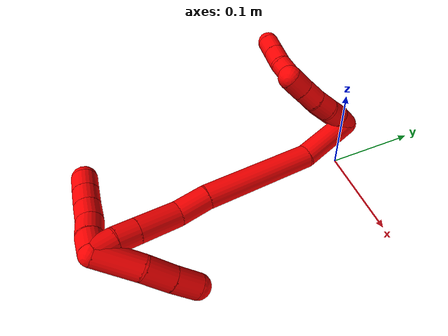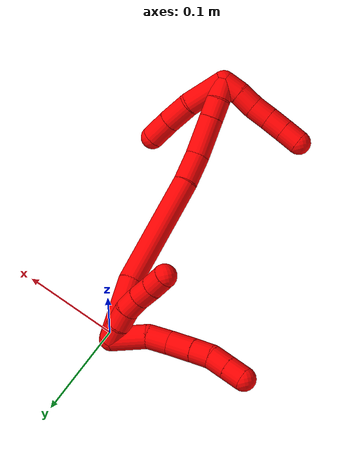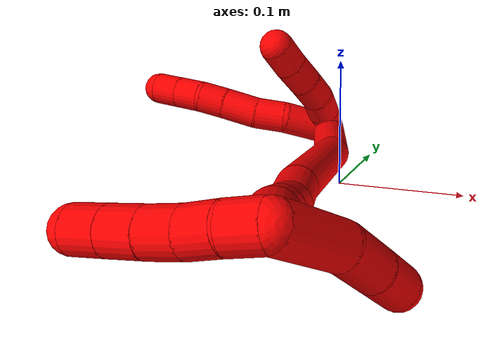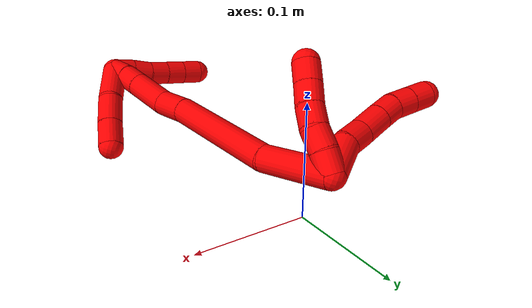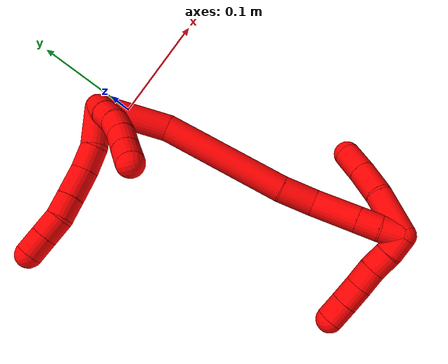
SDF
<sdf version="1.7">
 <world name="default">
  <model name="photoneo_s_sensor">
   <static>1</static>
   <pose>0 0 2 1.57079 1.57079 3.14159</pose>
   <link name="link">
    <inertial><mass>0.1</mass></inertial>
    <sensor name="sensor" type="depth">
     <update_rate>30</update_rate>
     <camera>
      <horizontal_fov>1.22</horizontal_fov>
      <image><width>1920</width><height>1200</height><format>B8G8R8</format></image>
      <clip><near>0.1</near><far>4</far></clip>
      <depth_camera><output>points</output></depth_camera>
     </camera>
     <plugin name="camera_plugin" filename="libgazebo_ros_depth_camera.so">
      <baseline>0.2</baseline>
      <alwaysOn>1</alwaysOn>
      <updateRate>0.0</updateRate>
      <cameraName>camera_ir</cameraName>
      <imageTopicName>/camera/color/image_raw</imageTopicName>
      <cameraInfoTopicName>/camera/color/camera_info</cameraInfoTopicName>
      <depthImageTopicName>/camera/depth/image_raw</depthImageTopicName>
      <depthImageCameraInfoTopicName>/camera/depth/camera_info</depthImageCameraInfoTopicName>
      <pointCloudTopicName>/camera/depth/points</pointCloudTopicName>
      <frameName>fr_optical</frameName>
      <pointCloudCutoff>0.1</pointCloudCutoff>
      <pointCloudCutoffMax>2.0</pointCloudCutoffMax>
      <distortionK1>0</distortionK1>
      <distortionK2>0</distortionK2>
      <distortionK3>0</distortionK3>
      <distortionT1>0</distortionT1>
      <distortionT2>0</distortionT2>
      <CxPrime>0</CxPrime>
      <Cx>0</Cx>
      <Cy>0</Cy>
      <focalLength>0</focalLength>
      <hackBaseline>0</hackBaseline>
     </plugin>
    </sensor>
   </link>
  </model>
  <model name="bin">
   <static>1</static>
   <link name="bottom">
    <collision name="collision-bottom">
     <pose>0 0 -0.01 0 -0 0</pose>
     <geometry><box><size>0.8 0.6 0.02</size></box></geometry>
     <surface>
      <friction><ode><mu>100</mu><mu2>100</mu2></ode></friction>
      <contact><collide_bitmask>65535</collide_bitmask></contact>
     </surface>
    </collision>
   </link>
   <link name="west_wall">
    <collision name="collision-west_wall">
     <pose>-0.41 0 0.1 0 -0 0</pose>
     <geometry><box><size>0.02 0.6 0.2</size></box></geometry>
     <surface>
      <friction><ode><mu>100</mu><mu2>100</mu2></ode></friction>
      <contact><collide_bitmask>65535</collide_bitmask></contact>
     </surface>
    </collision>
   </link>
   <link name="east_wall">
    <collision name="collision-east_wall">
     <pose>0.41 0 0.1 0 -0 0</pose>
     <geometry><box><size>0.02 0.6 0.2</size></box></geometry>
     <surface>
      <friction><ode><mu>100</mu><mu2>100</mu2></ode></friction>
      <contact><collide_bitmask>65535</collide_bitmask></contact>
     </surface>
    </collision>
   </link>
   <link name="south_wall">
    <collision name="collision-south_wall">
     <pose>0 -0.31 0.1 0 -0 0</pose>
     <geometry><box><size>0.8 0.02 0.2</size></box></geometry>
     <surface>
      <friction><ode><mu>100</mu><mu2>100</mu2></ode></friction>
      <contact><collide_bitmask>65535</collide_bitmask></contact>
     </surface>
    </collision>
   </link>
   <link name="north_wall">
    <collision name="collision-north_wall">
     <pose>0 0.31 0.1 0 -0 0</pose>
     <geometry><box><size>0.8 0.02 0.2</size></box></geometry>
     <surface>
      <friction><ode><mu>100</mu><mu2>100</mu2></ode></friction>
      <contact><collide_bitmask>65535</collide_bitmask></contact>
     </surface>
    </collision>
   </link>
  </model>
  <model name="2">
   <static>0</static>
   <link name="2">
    <collision name="collision-cylinder-e_1_2_8">
     <pose>-0.015026 -0.012222 -0.003321 1.83614 -0.870423 -1.09279</pose>
     <geometry><cylinder><radius>0.0125</radius><length>0.039304</length></cylinder></geometry>
     <surface>
      <friction><ode><mu>1.16</mu><mu2>1.16</mu2><slip1>0</slip1><slip2>0</slip2></ode></friction>
      <contact><ode><kp>1e+06</kp><kd>1</kd><max_vel>0</max_vel><min_depth>0.001</min_depth></ode></contact>
     </surface>
    </collision>
    <visual name="visual-cylinder-e_1_2_8">
     <pose>-0.015026 -0.012222 -0.003321 1.83614 -0.870423 -1.09279</pose>
     <geometry><cylinder><radius>0.0125</radius><length>0.039304</length></cylinder></geometry>
     <material><ambient>1 0 0 1</ambient></material>
    </visual>
    <collision name="collision-cylinder-e_2_8_9">
     <pose>-0.037728 -0.030984 -0.012327 2.28639 -0.725029 -1.3882</pose>
     <geometry><cylinder><radius>0.0125</radius><length>0.023151</length></cylinder></geometry>
     <surface>
      <friction><ode><mu>1.16</mu><mu2>1.16</mu2><slip1>0</slip1><slip2>0</slip2></ode></friction>
      <contact><ode><kp>1e+06</kp><kd>1</kd><max_vel>0</max_vel><min_depth>0.001</min_depth></ode></contact>
     </surface>
    </collision>
    <visual name="visual-cylinder-e_2_8_9">
     <pose>-0.037728 -0.030984 -0.012327 2.28639 -0.725029 -1.3882</pose>
     <geometry><cylinder><radius>0.0125</radius><length>0.023151</length></cylinder></geometry>
     <material><ambient>1 0 0 1</ambient></material>
    </visual>
    <collision name="collision-cylinder-e_3_9_10">
     <pose>-0.05549 -0.043511 -0.024593 2.40338 -0.847836 -1.72428</pose>
     <geometry><cylinder><radius>0.0125</radius><length>0.0269</length></cylinder></geometry>
     <surface>
      <friction><ode><mu>1.16</mu><mu2>1.16</mu2><slip1>0</slip1><slip2>0</slip2></ode></friction>
      <contact><ode><kp>1e+06</kp><kd>1</kd><max_vel>0</max_vel><min_depth>0.001</min_depth></ode></contact>
     </surface>
    </collision>
    <visual name="visual-cylinder-e_3_9_10">
     <pose>-0.05549 -0.043511 -0.024593 2.40338 -0.847836 -1.72428</pose>
     <geometry><cylinder><radius>0.0125</radius><length>0.0269</length></cylinder></geometry>
     <material><ambient>1 0 0 1</ambient></material>
    </visual>
    <collision name="collision-cylinder-e_4_10_11">
     <pose>-0.073025 -0.054103 -0.036347 2.41429 -0.821967 -1.70588</pose>
     <geometry><cylinder><radius>0.0125</radius><length>0.020341</length></cylinder></geometry>
     <surface>
      <friction><ode><mu>1.16</mu><mu2>1.16</mu2><slip1>0</slip1><slip2>0</slip2></ode></friction>
      <contact><ode><kp>1e+06</kp><kd>1</kd><max_vel>0</max_vel><min_depth>0.001</min_depth></ode></contact>
     </surface>
    </collision>
    <visual name="visual-cylinder-e_4_10_11">
     <pose>-0.073025 -0.054103 -0.036347 2.41429 -0.821967 -1.70588</pose>
     <geometry><cylinder><radius>0.0125</radius><length>0.020341</length></cylinder></geometry>
     <material><ambient>1 0 0 1</ambient></material>
    </visual>
    <collision name="collision-cylinder-e_5_11_12">
     <pose>-0.086509 -0.062323 -0.048728 2.67657 -0.642305 -1.9044</pose>
     <geometry><cylinder><radius>0.0125</radius><length>0.020146</length></cylinder></geometry>
     <surface>
      <friction><ode><mu>1.16</mu><mu2>1.16</mu2><slip1>0</slip1><slip2>0</slip2></ode></friction>
      <contact><ode><kp>1e+06</kp><kd>1</kd><max_vel>0</max_vel><min_depth>0.001</min_depth></ode></contact>
     </surface>
    </collision>
    <visual name="visual-cylinder-e_5_11_12">
     <pose>-0.086509 -0.062323 -0.048728 2.67657 -0.642305 -1.9044</pose>
     <geometry><cylinder><radius>0.0125</radius><length>0.020146</length></cylinder></geometry>
     <material><ambient>1 0 0 1</ambient></material>
    </visual>
    <collision name="collision-cylinder-e_6_12_6">
     <pose>-0.098576 -0.06957 -0.06315 2.67531 -0.641731 -1.90084</pose>
     <geometry><cylinder><radius>0.0125</radius><length>0.020158</length></cylinder></geometry>
     <surface>
      <friction><ode><mu>1.16</mu><mu2>1.16</mu2><slip1>0</slip1><slip2>0</slip2></ode></friction>
      <contact><ode><kp>1e+06</kp><kd>1</kd><max_vel>0</max_vel><min_depth>0.001</min_depth></ode></contact>
     </surface>
    </collision>
    <visual name="visual-cylinder-e_6_12_6">
     <pose>-0.098576 -0.06957 -0.06315 2.67531 -0.641731 -1.90084</pose>
     <geometry><cylinder><radius>0.0125</radius><length>0.020158</length></cylinder></geometry>
     <material><ambient>1 0 0 1</ambient></material>
    </visual>
    <collision name="collision-cylinder-e_1_2_13">
     <pose>-0.008156 -0.000838 0.005725 0.145261 -0.953769 -0.075147</pose>
     <geometry><cylinder><radius>0.0125</radius><length>0.02</length></cylinder></geometry>
     <surface>
      <friction><ode><mu>1.16</mu><mu2>1.16</mu2><slip1>0</slip1><slip2>0</slip2></ode></friction>
      <contact><ode><kp>1e+06</kp><kd>1</kd><max_vel>0</max_vel><min_depth>0.001</min_depth></ode></contact>
     </surface>
    </collision>
    <visual name="visual-cylinder-e_1_2_13">
     <pose>-0.008156 -0.000838 0.005725 0.145261 -0.953769 -0.075147</pose>
     <geometry><cylinder><radius>0.0125</radius><length>0.02</length></cylinder></geometry>
     <material><ambient>1 0 0 1</ambient></material>
    </visual>
    <collision name="collision-cylinder-e_2_13_14">
     <pose>-0.023895 -0.003695 0.017648 0.315104 -0.860725 -0.145603</pose>
     <geometry><cylinder><radius>0.0125</radius><length>0.02</length></cylinder></geometry>
     <surface>
      <friction><ode><mu>1.16</mu><mu2>1.16</mu2><slip1>0</slip1><slip2>0</slip2></ode></friction>
      <contact><ode><kp>1e+06</kp><kd>1</kd><max_vel>0</max_vel><min_depth>0.001</min_depth></ode></contact>
     </surface>
    </collision>
    <visual name="visual-cylinder-e_2_13_14">
     <pose>-0.023895 -0.003695 0.017648 0.315104 -0.860725 -0.145603</pose>
     <geometry><cylinder><radius>0.0125</radius><length>0.02</length></cylinder></geometry>
     <material><ambient>1 0 0 1</ambient></material>
    </visual>
    <collision name="collision-cylinder-e_3_14_15">
     <pose>-0.039926 -0.008953 0.028108 0.64974 -1.00606 -0.366492</pose>
     <geometry><cylinder><radius>0.0125</radius><length>0.02</length></cylinder></geometry>
     <surface>
      <friction><ode><mu>1.16</mu><mu2>1.16</mu2><slip1>0</slip1><slip2>0</slip2></ode></friction>
      <contact><ode><kp>1e+06</kp><kd>1</kd><max_vel>0</max_vel><min_depth>0.001</min_depth></ode></contact>
     </surface>
    </collision>
    <visual name="visual-cylinder-e_3_14_15">
     <pose>-0.039926 -0.008953 0.028108 0.64974 -1.00606 -0.366492</pose>
     <geometry><cylinder><radius>0.0125</radius><length>0.02</length></cylinder></geometry>
     <material><ambient>1 0 0 1</ambient></material>
    </visual>
    <collision name="collision-cylinder-e_4_15_16">
     <pose>-0.057344 -0.015205 0.035601 0.750441 -1.11308 -0.480627</pose>
     <geometry><cylinder><radius>0.0125</radius><length>0.02</length></cylinder></geometry>
     <surface>
      <friction><ode><mu>1.16</mu><mu2>1.16</mu2><slip1>0</slip1><slip2>0</slip2></ode></friction>
      <contact><ode><kp>1e+06</kp><kd>1</kd><max_vel>0</max_vel><min_depth>0.001</min_depth></ode></contact>
     </surface>
    </collision>
    <visual name="visual-cylinder-e_4_15_16">
     <pose>-0.057344 -0.015205 0.035601 0.750441 -1.11308 -0.480627</pose>
     <geometry><cylinder><radius>0.0125</radius><length>0.02</length></cylinder></geometry>
     <material><ambient>1 0 0 1</ambient></material>
    </visual>
    <collision name="collision-cylinder-e_5_16_5">
     <pose>-0.075311 -0.020741 0.042396 0.616071 -1.11897 -0.393337</pose>
     <geometry><cylinder><radius>0.0125</radius><length>0.02</length></cylinder></geometry>
     <surface>
      <friction><ode><mu>1.16</mu><mu2>1.16</mu2><slip1>0</slip1><slip2>0</slip2></ode></friction>
      <contact><ode><kp>1e+06</kp><kd>1</kd><max_vel>0</max_vel><min_depth>0.001</min_depth></ode></contact>
     </surface>
    </collision>
    <visual name="visual-cylinder-e_5_16_5">
     <pose>-0.075311 -0.020741 0.042396 0.616071 -1.11897 -0.393337</pose>
     <geometry><cylinder><radius>0.0125</radius><length>0.02</length></cylinder></geometry>
     <material><ambient>1 0 0 1</ambient></material>
    </visual>
    <collision name="collision-cylinder-e_1_2_17">
     <pose>0.000944 -0.019704 0.026864 0.632829 0.02834 0.00928</pose>
     <geometry><cylinder><radius>0.0125</radius><length>0.066658</length></cylinder></geometry>
     <surface>
      <friction><ode><mu>1.16</mu><mu2>1.16</mu2><slip1>0</slip1><slip2>0</slip2></ode></friction>
      <contact><ode><kp>1e+06</kp><kd>1</kd><max_vel>0</max_vel><min_depth>0.001</min_depth></ode></contact>
     </surface>
    </collision>
    <visual name="visual-cylinder-e_1_2_17">
     <pose>0.000944 -0.019704 0.026864 0.632829 0.02834 0.00928</pose>
     <geometry><cylinder><radius>0.0125</radius><length>0.066658</length></cylinder></geometry>
     <material><ambient>1 0 0 1</ambient></material>
    </visual>
    <collision name="collision-cylinder-e_2_17_18">
     <pose>-0.01032 -0.077918 0.096951 0.727812 -0.207853 -0.079409</pose>
     <geometry><cylinder><radius>0.0125</radius><length>0.118325</length></cylinder></geometry>
     <surface>
      <friction><ode><mu>1.16</mu><mu2>1.16</mu2><slip1>0</slip1><slip2>0</slip2></ode></friction>
      <contact><ode><kp>1e+06</kp><kd>1</kd><max_vel>0</max_vel><min_depth>0.001</min_depth></ode></contact>
     </surface>
    </collision>
    <visual name="visual-cylinder-e_2_17_18">
     <pose>-0.01032 -0.077918 0.096951 0.727812 -0.207853 -0.079409</pose>
     <geometry><cylinder><radius>0.0125</radius><length>0.118325</length></cylinder></geometry>
     <material><ambient>1 0 0 1</ambient></material>
    </visual>
    <collision name="collision-cylinder-e_3_18_19">
     <pose>-0.023951 -0.126652 0.152478 0.693244 -0.088686 -0.032052</pose>
     <geometry><cylinder><radius>0.0125</radius><length>0.032124</length></cylinder></geometry>
     <surface>
      <friction><ode><mu>1.16</mu><mu2>1.16</mu2><slip1>0</slip1><slip2>0</slip2></ode></friction>
      <contact><ode><kp>1e+06</kp><kd>1</kd><max_vel>0</max_vel><min_depth>0.001</min_depth></ode></contact>
     </surface>
    </collision>
    <visual name="visual-cylinder-e_3_18_19">
     <pose>-0.023951 -0.126652 0.152478 0.693244 -0.088686 -0.032052</pose>
     <geometry><cylinder><radius>0.0125</radius><length>0.032124</length></cylinder></geometry>
     <material><ambient>1 0 0 1</ambient></material>
    </visual>
    <collision name="collision-cylinder-e_4_19_20">
     <pose>-0.03124 -0.146956 0.182264 0.523119 -0.282935 -0.076212</pose>
     <geometry><cylinder><radius>0.0125</radius><length>0.042028</length></cylinder></geometry>
     <surface>
      <friction><ode><mu>1.16</mu><mu2>1.16</mu2><slip1>0</slip1><slip2>0</slip2></ode></friction>
      <contact><ode><kp>1e+06</kp><kd>1</kd><max_vel>0</max_vel><min_depth>0.001</min_depth></ode></contact>
     </surface>
    </collision>
    <visual name="visual-cylinder-e_4_19_20">
     <pose>-0.03124 -0.146956 0.182264 0.523119 -0.282935 -0.076212</pose>
     <geometry><cylinder><radius>0.0125</radius><length>0.042028</length></cylinder></geometry>
     <material><ambient>1 0 0 1</ambient></material>
    </visual>
    <collision name="collision-cylinder-e_5_20_21">
     <pose>-0.039949 -0.162062 0.2083 0.531041 -0.278986 -0.076327</pose>
     <geometry><cylinder><radius>0.0125</radius><length>0.020642</length></cylinder></geometry>
     <surface>
      <friction><ode><mu>1.16</mu><mu2>1.16</mu2><slip1>0</slip1><slip2>0</slip2></ode></friction>
      <contact><ode><kp>1e+06</kp><kd>1</kd><max_vel>0</max_vel><min_depth>0.001</min_depth></ode></contact>
     </surface>
    </collision>
    <visual name="visual-cylinder-e_5_20_21">
     <pose>-0.039949 -0.162062 0.2083 0.531041 -0.278986 -0.076327</pose>
     <geometry><cylinder><radius>0.0125</radius><length>0.020642</length></cylinder></geometry>
     <material><ambient>1 0 0 1</ambient></material>
    </visual>
    <collision name="collision-cylinder-e_6_21_1">
     <pose>-0.044207 -0.172278 0.225416 0.545057 -0.140402 -0.039299</pose>
     <geometry><cylinder><radius>0.0125</radius><length>0.020223</length></cylinder></geometry>
     <surface>
      <friction><ode><mu>1.16</mu><mu2>1.16</mu2><slip1>0</slip1><slip2>0</slip2></ode></friction>
      <contact><ode><kp>1e+06</kp><kd>1</kd><max_vel>0</max_vel><min_depth>0.001</min_depth></ode></contact>
     </surface>
    </collision>
    <visual name="visual-cylinder-e_6_21_1">
     <pose>-0.044207 -0.172278 0.225416 0.545057 -0.140402 -0.039299</pose>
     <geometry><cylinder><radius>0.0125</radius><length>0.020223</length></cylinder></geometry>
     <material><ambient>1 0 0 1</ambient></material>
    </visual>
    <collision name="collision-cylinder-e_1_1_22">
     <pose>-0.049238 -0.182908 0.226405 2.51867 -0.370055 -1.05323</pose>
     <geometry><cylinder><radius>0.0125</radius><length>0.02</length></cylinder></geometry>
     <surface>
      <friction><ode><mu>1.16</mu><mu2>1.16</mu2><slip1>0</slip1><slip2>0</slip2></ode></friction>
      <contact><ode><kp>1e+06</kp><kd>1</kd><max_vel>0</max_vel><min_depth>0.001</min_depth></ode></contact>
     </surface>
    </collision>
    <visual name="visual-cylinder-e_1_1_22">
     <pose>-0.049238 -0.182908 0.226405 2.51867 -0.370055 -1.05323</pose>
     <geometry><cylinder><radius>0.0125</radius><length>0.02</length></cylinder></geometry>
     <material><ambient>1 0 0 1</ambient></material>
    </visual>
    <collision name="collision-cylinder-e_2_22_23">
     <pose>-0.055463 -0.193039 0.210397 2.63406 -0.263874 -0.945899</pose>
     <geometry><cylinder><radius>0.0125</radius><length>0.02</length></cylinder></geometry>
     <surface>
      <friction><ode><mu>1.16</mu><mu2>1.16</mu2><slip1>0</slip1><slip2>0</slip2></ode></friction>
      <contact><ode><kp>1e+06</kp><kd>1</kd><max_vel>0</max_vel><min_depth>0.001</min_depth></ode></contact>
     </surface>
    </collision>
    <visual name="visual-cylinder-e_2_22_23">
     <pose>-0.055463 -0.193039 0.210397 2.63406 -0.263874 -0.945899</pose>
     <geometry><cylinder><radius>0.0125</radius><length>0.02</length></cylinder></geometry>
     <material><ambient>1 0 0 1</ambient></material>
    </visual>
    <collision name="collision-cylinder-e_3_23_24">
     <pose>-0.061972 -0.202692 0.194203 2.57251 -0.400677 -1.21376</pose>
     <geometry><cylinder><radius>0.0125</radius><length>0.02</length></cylinder></geometry>
     <surface>
      <friction><ode><mu>1.16</mu><mu2>1.16</mu2><slip1>0</slip1><slip2>0</slip2></ode></friction>
      <contact><ode><kp>1e+06</kp><kd>1</kd><max_vel>0</max_vel><min_depth>0.001</min_depth></ode></contact>
     </surface>
    </collision>
    <visual name="visual-cylinder-e_3_23_24">
     <pose>-0.061972 -0.202692 0.194203 2.57251 -0.400677 -1.21376</pose>
     <geometry><cylinder><radius>0.0125</radius><length>0.02</length></cylinder></geometry>
     <material><ambient>1 0 0 1</ambient></material>
    </visual>
    <collision name="collision-cylinder-e_4_24_25">
     <pose>-0.069933 -0.212253 0.17855 2.61419 -0.418205 -1.33226</pose>
     <geometry><cylinder><radius>0.0125</radius><length>0.02</length></cylinder></geometry>
     <surface>
      <friction><ode><mu>1.16</mu><mu2>1.16</mu2><slip1>0</slip1><slip2>0</slip2></ode></friction>
      <contact><ode><kp>1e+06</kp><kd>1</kd><max_vel>0</max_vel><min_depth>0.001</min_depth></ode></contact>
     </surface>
    </collision>
    <visual name="visual-cylinder-e_4_24_25">
     <pose>-0.069933 -0.212253 0.17855 2.61419 -0.418205 -1.33226</pose>
     <geometry><cylinder><radius>0.0125</radius><length>0.02</length></cylinder></geometry>
     <material><ambient>1 0 0 1</ambient></material>
    </visual>
    <collision name="collision-cylinder-e_5_25_4">
     <pose>-0.07801 -0.221354 0.162677 2.62779 -0.413215 -1.34685</pose>
     <geometry><cylinder><radius>0.0125</radius><length>0.02</length></cylinder></geometry>
     <surface>
      <friction><ode><mu>1.16</mu><mu2>1.16</mu2><slip1>0</slip1><slip2>0</slip2></ode></friction>
      <contact><ode><kp>1e+06</kp><kd>1</kd><max_vel>0</max_vel><min_depth>0.001</min_depth></ode></contact>
     </surface>
    </collision>
    <visual name="visual-cylinder-e_5_25_4">
     <pose>-0.07801 -0.221354 0.162677 2.62779 -0.413215 -1.34685</pose>
     <geometry><cylinder><radius>0.0125</radius><length>0.02</length></cylinder></geometry>
     <material><ambient>1 0 0 1</ambient></material>
    </visual>
    <collision name="collision-cylinder-e_1_1_26">
     <pose>-0.028977 -0.164656 0.227709 -2.02582 0.862276 -1.27048</pose>
     <geometry><cylinder><radius>0.0125</radius><length>0.043839</length></cylinder></geometry>
     <surface>
      <friction><ode><mu>1.16</mu><mu2>1.16</mu2><slip1>0</slip1><slip2>0</slip2></ode></friction>
      <contact><ode><kp>1e+06</kp><kd>1</kd><max_vel>0</max_vel><min_depth>0.001</min_depth></ode></contact>
     </surface>
    </collision>
    <visual name="visual-cylinder-e_1_1_26">
     <pose>-0.028977 -0.164656 0.227709 -2.02582 0.862276 -1.27048</pose>
     <geometry><cylinder><radius>0.0125</radius><length>0.043839</length></cylinder></geometry>
     <material><ambient>1 0 0 1</ambient></material>
    </visual>
    <collision name="collision-cylinder-e_2_26_27">
     <pose>7.3e-05 -0.146 0.215999 -2.32048 0.998886 -1.79473</pose>
     <geometry><cylinder><radius>0.0125</radius><length>0.029509</length></cylinder></geometry>
     <surface>
      <friction><ode><mu>1.16</mu><mu2>1.16</mu2><slip1>0</slip1><slip2>0</slip2></ode></friction>
      <contact><ode><kp>1e+06</kp><kd>1</kd><max_vel>0</max_vel><min_depth>0.001</min_depth></ode></contact>
     </surface>
    </collision>
    <visual name="visual-cylinder-e_2_26_27">
     <pose>7.3e-05 -0.146 0.215999 -2.32048 0.998886 -1.79473</pose>
     <geometry><cylinder><radius>0.0125</radius><length>0.029509</length></cylinder></geometry>
     <material><ambient>1 0 0 1</ambient></material>
    </visual>
    <collision name="collision-cylinder-e_3_27_3">
     <pose>0.023375 -0.134858 0.205007 -2.37954 0.957254 -1.82663</pose>
     <geometry><cylinder><radius>0.0125</radius><length>0.026652</length></cylinder></geometry>
     <surface>
      <friction><ode><mu>1.16</mu><mu2>1.16</mu2><slip1>0</slip1><slip2>0</slip2></ode></friction>
      <contact><ode><kp>1e+06</kp><kd>1</kd><max_vel>0</max_vel><min_depth>0.001</min_depth></ode></contact>
     </surface>
    </collision>
    <visual name="visual-cylinder-e_3_27_3">
     <pose>0.023375 -0.134858 0.205007 -2.37954 0.957254 -1.82663</pose>
     <geometry><cylinder><radius>0.0125</radius><length>0.026652</length></cylinder></geometry>
     <material><ambient>1 0 0 1</ambient></material>
    </visual>
    <collision name="collision-sphere-3">
     <pose>0.034271 -0.12956 0.199456 0 -0 0</pose>
     <geometry><sphere><radius>0.0125</radius></sphere></geometry>
     <surface>
      <friction><ode><mu>1.16</mu><mu2>1.16</mu2><slip1>0</slip1><slip2>0</slip2></ode></friction>
      <contact><ode><kp>1e+06</kp><kd>1</kd><max_vel>0</max_vel><min_depth>0.001</min_depth></ode></contact>
     </surface>
    </collision>
    <visual name="visual-sphere-3">
     <pose>0.034271 -0.12956 0.199456 0 -0 0</pose>
     <geometry><sphere><radius>0.0125</radius></sphere></geometry>
     <material><ambient>1 0 0 1</ambient></material>
    </visual>
    <collision name="collision-sphere-27">
     <pose>0.01248 -0.140155 0.210557 0 -0 0</pose>
     <geometry><sphere><radius>0.0125</radius></sphere></geometry>
     <surface>
      <friction><ode><mu>1.16</mu><mu2>1.16</mu2><slip1>0</slip1><slip2>0</slip2></ode></friction>
      <contact><ode><kp>1e+06</kp><kd>1</kd><max_vel>0</max_vel><min_depth>0.001</min_depth></ode></contact>
     </surface>
    </collision>
    <visual name="visual-sphere-27">
     <pose>0.01248 -0.140155 0.210557 0 -0 0</pose>
     <geometry><sphere><radius>0.0125</radius></sphere></geometry>
     <material><ambient>1 0 0 1</ambient></material>
    </visual>
    <collision name="collision-sphere-26">
     <pose>-0.012333 -0.151844 0.22144 0 -0 0</pose>
     <geometry><sphere><radius>0.0125</radius></sphere></geometry>
     <surface>
      <friction><ode><mu>1.16</mu><mu2>1.16</mu2><slip1>0</slip1><slip2>0</slip2></ode></friction>
      <contact><ode><kp>1e+06</kp><kd>1</kd><max_vel>0</max_vel><min_depth>0.001</min_depth></ode></contact>
     </surface>
    </collision>
    <visual name="visual-sphere-26">
     <pose>-0.012333 -0.151844 0.22144 0 -0 0</pose>
     <geometry><sphere><radius>0.0125</radius></sphere></geometry>
     <material><ambient>1 0 0 1</ambient></material>
    </visual>
    <collision name="collision-sphere-4">
     <pose>-0.082026 -0.225855 0.154701 0 -0 0</pose>
     <geometry><sphere><radius>0.0125</radius></sphere></geometry>
     <surface>
      <friction><ode><mu>1.16</mu><mu2>1.16</mu2><slip1>0</slip1><slip2>0</slip2></ode></friction>
      <contact><ode><kp>1e+06</kp><kd>1</kd><max_vel>0</max_vel><min_depth>0.001</min_depth></ode></contact>
     </surface>
    </collision>
    <visual name="visual-sphere-4">
     <pose>-0.082026 -0.225855 0.154701 0 -0 0</pose>
     <geometry><sphere><radius>0.0125</radius></sphere></geometry>
     <material><ambient>1 0 0 1</ambient></material>
    </visual>
    <collision name="collision-sphere-25">
     <pose>-0.073995 -0.216853 0.170653 0 -0 0</pose>
     <geometry><sphere><radius>0.0125</radius></sphere></geometry>
     <surface>
      <friction><ode><mu>1.16</mu><mu2>1.16</mu2><slip1>0</slip1><slip2>0</slip2></ode></friction>
      <contact><ode><kp>1e+06</kp><kd>1</kd><max_vel>0</max_vel><min_depth>0.001</min_depth></ode></contact>
     </surface>
    </collision>
    <visual name="visual-sphere-25">
     <pose>-0.073995 -0.216853 0.170653 0 -0 0</pose>
     <geometry><sphere><radius>0.0125</radius></sphere></geometry>
     <material><ambient>1 0 0 1</ambient></material>
    </visual>
    <collision name="collision-sphere-24">
     <pose>-0.065872 -0.207654 0.186446 0 -0 0</pose>
     <geometry><sphere><radius>0.0125</radius></sphere></geometry>
     <surface>
      <friction><ode><mu>1.16</mu><mu2>1.16</mu2><slip1>0</slip1><slip2>0</slip2></ode></friction>
      <contact><ode><kp>1e+06</kp><kd>1</kd><max_vel>0</max_vel><min_depth>0.001</min_depth></ode></contact>
     </surface>
    </collision>
    <visual name="visual-sphere-24">
     <pose>-0.065872 -0.207654 0.186446 0 -0 0</pose>
     <geometry><sphere><radius>0.0125</radius></sphere></geometry>
     <material><ambient>1 0 0 1</ambient></material>
    </visual>
    <collision name="collision-sphere-23">
     <pose>-0.058071 -0.197731 0.20196 0 -0 0</pose>
     <geometry><sphere><radius>0.0125</radius></sphere></geometry>
     <surface>
      <friction><ode><mu>1.16</mu><mu2>1.16</mu2><slip1>0</slip1><slip2>0</slip2></ode></friction>
      <contact><ode><kp>1e+06</kp><kd>1</kd><max_vel>0</max_vel><min_depth>0.001</min_depth></ode></contact>
     </surface>
    </collision>
    <visual name="visual-sphere-23">
     <pose>-0.058071 -0.197731 0.20196 0 -0 0</pose>
     <geometry><sphere><radius>0.0125</radius></sphere></geometry>
     <material><ambient>1 0 0 1</ambient></material>
    </visual>
    <collision name="collision-sphere-22">
     <pose>-0.052855 -0.188347 0.218833 0 -0 0</pose>
     <geometry><sphere><radius>0.0125</radius></sphere></geometry>
     <surface>
      <friction><ode><mu>1.16</mu><mu2>1.16</mu2><slip1>0</slip1><slip2>0</slip2></ode></friction>
      <contact><ode><kp>1e+06</kp><kd>1</kd><max_vel>0</max_vel><min_depth>0.001</min_depth></ode></contact>
     </surface>
    </collision>
    <visual name="visual-sphere-22">
     <pose>-0.052855 -0.188347 0.218833 0 -0 0</pose>
     <geometry><sphere><radius>0.0125</radius></sphere></geometry>
     <material><ambient>1 0 0 1</ambient></material>
    </visual>
    <collision name="collision-sphere-1">
     <pose>-0.045622 -0.177468 0.233977 0 -0 0</pose>
     <geometry><sphere><radius>0.0125</radius></sphere></geometry>
     <surface>
      <friction><ode><mu>1.16</mu><mu2>1.16</mu2><slip1>0</slip1><slip2>0</slip2></ode></friction>
      <contact><ode><kp>1e+06</kp><kd>1</kd><max_vel>0</max_vel><min_depth>0.001</min_depth></ode></contact>
     </surface>
    </collision>
    <visual name="visual-sphere-1">
     <pose>-0.045622 -0.177468 0.233977 0 -0 0</pose>
     <geometry><sphere><radius>0.0125</radius></sphere></geometry>
     <material><ambient>1 0 0 1</ambient></material>
    </visual>
    <collision name="collision-sphere-21">
     <pose>-0.042792 -0.167087 0.216855 0 -0 0</pose>
     <geometry><sphere><radius>0.0125</radius></sphere></geometry>
     <surface>
      <friction><ode><mu>1.16</mu><mu2>1.16</mu2><slip1>0</slip1><slip2>0</slip2></ode></friction>
      <contact><ode><kp>1e+06</kp><kd>1</kd><max_vel>0</max_vel><min_depth>0.001</min_depth></ode></contact>
     </surface>
    </collision>
    <visual name="visual-sphere-21">
     <pose>-0.042792 -0.167087 0.216855 0 -0 0</pose>
     <geometry><sphere><radius>0.0125</radius></sphere></geometry>
     <material><ambient>1 0 0 1</ambient></material>
    </visual>
    <collision name="collision-sphere-12">
     <pose>-0.092543 -0.06594 -0.055938 0 -0 0</pose>
     <geometry><sphere><radius>0.0125</radius></sphere></geometry>
     <surface>
      <friction><ode><mu>1.16</mu><mu2>1.16</mu2><slip1>0</slip1><slip2>0</slip2></ode></friction>
      <contact><ode><kp>1e+06</kp><kd>1</kd><max_vel>0</max_vel><min_depth>0.001</min_depth></ode></contact>
     </surface>
    </collision>
    <visual name="visual-sphere-12">
     <pose>-0.092543 -0.06594 -0.055938 0 -0 0</pose>
     <geometry><sphere><radius>0.0125</radius></sphere></geometry>
     <material><ambient>1 0 0 1</ambient></material>
    </visual>
    <collision name="collision-sphere-11">
     <pose>-0.080475 -0.058706 -0.041519 0 -0 0</pose>
     <geometry><sphere><radius>0.0125</radius></sphere></geometry>
     <surface>
      <friction><ode><mu>1.16</mu><mu2>1.16</mu2><slip1>0</slip1><slip2>0</slip2></ode></friction>
      <contact><ode><kp>1e+06</kp><kd>1</kd><max_vel>0</max_vel><min_depth>0.001</min_depth></ode></contact>
     </surface>
    </collision>
    <visual name="visual-sphere-11">
     <pose>-0.080475 -0.058706 -0.041519 0 -0 0</pose>
     <geometry><sphere><radius>0.0125</radius></sphere></geometry>
     <material><ambient>1 0 0 1</ambient></material>
    </visual>
    <collision name="collision-sphere-10">
     <pose>-0.065575 -0.049499 -0.031175 0 -0 0</pose>
     <geometry><sphere><radius>0.0125</radius></sphere></geometry>
     <surface>
      <friction><ode><mu>1.16</mu><mu2>1.16</mu2><slip1>0</slip1><slip2>0</slip2></ode></friction>
      <contact><ode><kp>1e+06</kp><kd>1</kd><max_vel>0</max_vel><min_depth>0.001</min_depth></ode></contact>
     </surface>
    </collision>
    <visual name="visual-sphere-10">
     <pose>-0.065575 -0.049499 -0.031175 0 -0 0</pose>
     <geometry><sphere><radius>0.0125</radius></sphere></geometry>
     <material><ambient>1 0 0 1</ambient></material>
    </visual>
    <collision name="collision-sphere-9">
     <pose>-0.045404 -0.037522 -0.018011 0 -0 0</pose>
     <geometry><sphere><radius>0.0125</radius></sphere></geometry>
     <surface>
      <friction><ode><mu>1.16</mu><mu2>1.16</mu2><slip1>0</slip1><slip2>0</slip2></ode></friction>
      <contact><ode><kp>1e+06</kp><kd>1</kd><max_vel>0</max_vel><min_depth>0.001</min_depth></ode></contact>
     </surface>
    </collision>
    <visual name="visual-sphere-9">
     <pose>-0.045404 -0.037522 -0.018011 0 -0 0</pose>
     <geometry><sphere><radius>0.0125</radius></sphere></geometry>
     <material><ambient>1 0 0 1</ambient></material>
    </visual>
    <collision name="collision-sphere-2">
     <geometry><sphere><radius>0.0125</radius></sphere></geometry>
     <surface>
      <friction><ode><mu>1.16</mu><mu2>1.16</mu2><slip1>0</slip1><slip2>0</slip2></ode></friction>
      <contact><ode><kp>1e+06</kp><kd>1</kd><max_vel>0</max_vel><min_depth>0.001</min_depth></ode></contact>
     </surface>
    </collision>
    <visual name="visual-sphere-2">
     <geometry><sphere><radius>0.0125</radius></sphere></geometry>
     <material><ambient>1 0 0 1</ambient></material>
    </visual>
    <collision name="collision-sphere-19">
     <pose>-0.025374 -0.136875 0.164784 0 -0 0</pose>
     <geometry><sphere><radius>0.0125</radius></sphere></geometry>
     <surface>
      <friction><ode><mu>1.16</mu><mu2>1.16</mu2><slip1>0</slip1><slip2>0</slip2></ode></friction>
      <contact><ode><kp>1e+06</kp><kd>1</kd><max_vel>0</max_vel><min_depth>0.001</min_depth></ode></contact>
     </surface>
    </collision>
    <visual name="visual-sphere-19">
     <pose>-0.025374 -0.136875 0.164784 0 -0 0</pose>
     <geometry><sphere><radius>0.0125</radius></sphere></geometry>
     <material><ambient>1 0 0 1</ambient></material>
    </visual>
    <collision name="collision-sphere-8">
     <pose>-0.030052 -0.024445 -0.006643 0 -0 0</pose>
     <geometry><sphere><radius>0.0125</radius></sphere></geometry>
     <surface>
      <friction><ode><mu>1.16</mu><mu2>1.16</mu2><slip1>0</slip1><slip2>0</slip2></ode></friction>
      <contact><ode><kp>1e+06</kp><kd>1</kd><max_vel>0</max_vel><min_depth>0.001</min_depth></ode></contact>
     </surface>
    </collision>
    <visual name="visual-sphere-8">
     <pose>-0.030052 -0.024445 -0.006643 0 -0 0</pose>
     <geometry><sphere><radius>0.0125</radius></sphere></geometry>
     <material><ambient>1 0 0 1</ambient></material>
    </visual>
    <collision name="collision-sphere-6">
     <pose>-0.10461 -0.0732 -0.070362 0 -0 0</pose>
     <geometry><sphere><radius>0.0125</radius></sphere></geometry>
     <surface>
      <friction><ode><mu>1.16</mu><mu2>1.16</mu2><slip1>0</slip1><slip2>0</slip2></ode></friction>
      <contact><ode><kp>1e+06</kp><kd>1</kd><max_vel>0</max_vel><min_depth>0.001</min_depth></ode></contact>
     </surface>
    </collision>
    <visual name="visual-sphere-6">
     <pose>-0.10461 -0.0732 -0.070362 0 -0 0</pose>
     <geometry><sphere><radius>0.0125</radius></sphere></geometry>
     <material><ambient>1 0 0 1</ambient></material>
    </visual>
    <collision name="collision-sphere-13">
     <pose>-0.016312 -0.001675 0.01145 0 -0 0</pose>
     <geometry><sphere><radius>0.0125</radius></sphere></geometry>
     <surface>
      <friction><ode><mu>1.16</mu><mu2>1.16</mu2><slip1>0</slip1><slip2>0</slip2></ode></friction>
      <contact><ode><kp>1e+06</kp><kd>1</kd><max_vel>0</max_vel><min_depth>0.001</min_depth></ode></contact>
     </surface>
    </collision>
    <visual name="visual-sphere-13">
     <pose>-0.016312 -0.001675 0.01145 0 -0 0</pose>
     <geometry><sphere><radius>0.0125</radius></sphere></geometry>
     <material><ambient>1 0 0 1</ambient></material>
    </visual>
    <collision name="collision-sphere-14">
     <pose>-0.031478 -0.005716 0.023846 0 -0 0</pose>
     <geometry><sphere><radius>0.0125</radius></sphere></geometry>
     <surface>
      <friction><ode><mu>1.16</mu><mu2>1.16</mu2><slip1>0</slip1><slip2>0</slip2></ode></friction>
      <contact><ode><kp>1e+06</kp><kd>1</kd><max_vel>0</max_vel><min_depth>0.001</min_depth></ode></contact>
     </surface>
    </collision>
    <visual name="visual-sphere-14">
     <pose>-0.031478 -0.005716 0.023846 0 -0 0</pose>
     <geometry><sphere><radius>0.0125</radius></sphere></geometry>
     <material><ambient>1 0 0 1</ambient></material>
    </visual>
    <collision name="collision-sphere-15">
     <pose>-0.048373 -0.012191 0.032369 0 -0 0</pose>
     <geometry><sphere><radius>0.0125</radius></sphere></geometry>
     <surface>
      <friction><ode><mu>1.16</mu><mu2>1.16</mu2><slip1>0</slip1><slip2>0</slip2></ode></friction>
      <contact><ode><kp>1e+06</kp><kd>1</kd><max_vel>0</max_vel><min_depth>0.001</min_depth></ode></contact>
     </surface>
    </collision>
    <visual name="visual-sphere-15">
     <pose>-0.048373 -0.012191 0.032369 0 -0 0</pose>
     <geometry><sphere><radius>0.0125</radius></sphere></geometry>
     <material><ambient>1 0 0 1</ambient></material>
    </visual>
    <collision name="collision-sphere-16">
     <pose>-0.066314 -0.018218 0.038833 0 -0 0</pose>
     <geometry><sphere><radius>0.0125</radius></sphere></geometry>
     <surface>
      <friction><ode><mu>1.16</mu><mu2>1.16</mu2><slip1>0</slip1><slip2>0</slip2></ode></friction>
      <contact><ode><kp>1e+06</kp><kd>1</kd><max_vel>0</max_vel><min_depth>0.001</min_depth></ode></contact>
     </surface>
    </collision>
    <visual name="visual-sphere-16">
     <pose>-0.066314 -0.018218 0.038833 0 -0 0</pose>
     <geometry><sphere><radius>0.0125</radius></sphere></geometry>
     <material><ambient>1 0 0 1</ambient></material>
    </visual>
    <collision name="collision-sphere-5">
     <pose>-0.084307 -0.023264 0.04596 0 -0 0</pose>
     <geometry><sphere><radius>0.0125</radius></sphere></geometry>
     <surface>
      <friction><ode><mu>1.16</mu><mu2>1.16</mu2><slip1>0</slip1><slip2>0</slip2></ode></friction>
      <contact><ode><kp>1e+06</kp><kd>1</kd><max_vel>0</max_vel><min_depth>0.001</min_depth></ode></contact>
     </surface>
    </collision>
    <visual name="visual-sphere-5">
     <pose>-0.084307 -0.023264 0.04596 0 -0 0</pose>
     <geometry><sphere><radius>0.0125</radius></sphere></geometry>
     <material><ambient>1 0 0 1</ambient></material>
    </visual>
    <collision name="collision-sphere-17">
     <pose>0.001889 -0.039408 0.053729 0 -0 0</pose>
     <geometry><sphere><radius>0.0125</radius></sphere></geometry>
     <surface>
      <friction><ode><mu>1.16</mu><mu2>1.16</mu2><slip1>0</slip1><slip2>0</slip2></ode></friction>
      <contact><ode><kp>1e+06</kp><kd>1</kd><max_vel>0</max_vel><min_depth>0.001</min_depth></ode></contact>
     </surface>
    </collision>
    <visual name="visual-sphere-17">
     <pose>0.001889 -0.039408 0.053729 0 -0 0</pose>
     <geometry><sphere><radius>0.0125</radius></sphere></geometry>
     <material><ambient>1 0 0 1</ambient></material>
    </visual>
    <collision name="collision-sphere-18">
     <pose>-0.022529 -0.116428 0.140173 0 -0 0</pose>
     <geometry><sphere><radius>0.0125</radius></sphere></geometry>
     <surface>
      <friction><ode><mu>1.16</mu><mu2>1.16</mu2><slip1>0</slip1><slip2>0</slip2></ode></friction>
      <contact><ode><kp>1e+06</kp><kd>1</kd><max_vel>0</max_vel><min_depth>0.001</min_depth></ode></contact>
     </surface>
    </collision>
    <visual name="visual-sphere-18">
     <pose>-0.022529 -0.116428 0.140173 0 -0 0</pose>
     <geometry><sphere><radius>0.0125</radius></sphere></geometry>
     <material><ambient>1 0 0 1</ambient></material>
    </visual>
    <collision name="collision-sphere-20">
     <pose>-0.037107 -0.157037 0.199744 0 -0 0</pose>
     <geometry><sphere><radius>0.0125</radius></sphere></geometry>
     <surface>
      <friction><ode><mu>1.16</mu><mu2>1.16</mu2><slip1>0</slip1><slip2>0</slip2></ode></friction>
      <contact><ode><kp>1e+06</kp><kd>1</kd><max_vel>0</max_vel><min_depth>0.001</min_depth></ode></contact>
     </surface>
    </collision>
    <visual name="visual-sphere-20">
     <pose>-0.037107 -0.157037 0.199744 0 -0 0</pose>
     <geometry><sphere><radius>0.0125</radius></sphere></geometry>
     <material><ambient>1 0 0 1</ambient></material>
    </visual>
    <inertial>
     <pose>-0.032215 -0.093451 0.099283 0 -0 0</pose>
     <mass>0.75</mass>
     <inertia>
      <ixx>0.000136</ixx>
      <ixy>0</ixy>
      <ixz>0</ixz>
      <iyy>0.000106</iyy>
      <iyz>0</iyz>
      <izz>0.00017</izz>
     </inertia>
    </inertial>
   </link>
   <pose>-0.014845 0.016078 0.041567 1.00547 0.984079 0.386432</pose>
  </model>
 </world>
</sdf>
